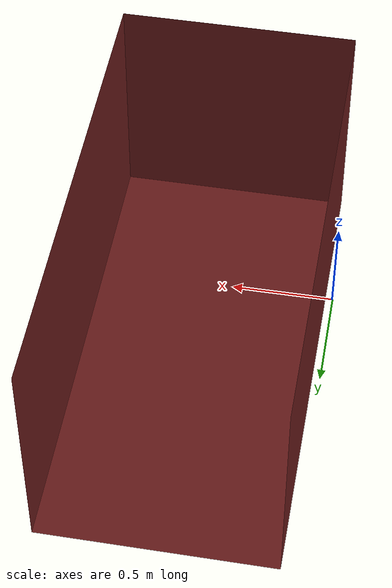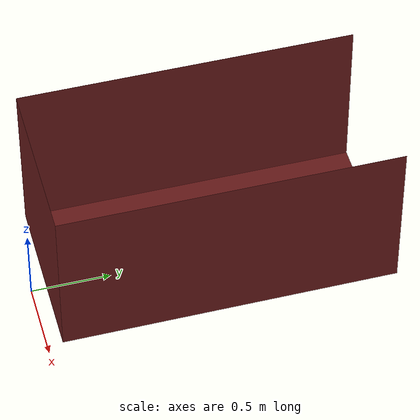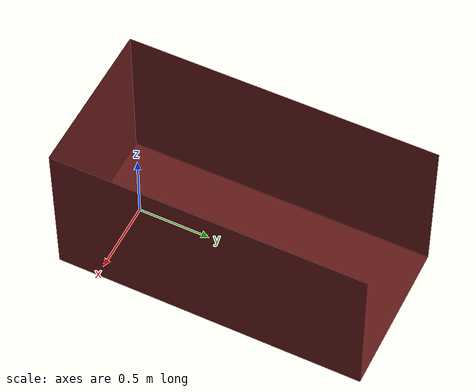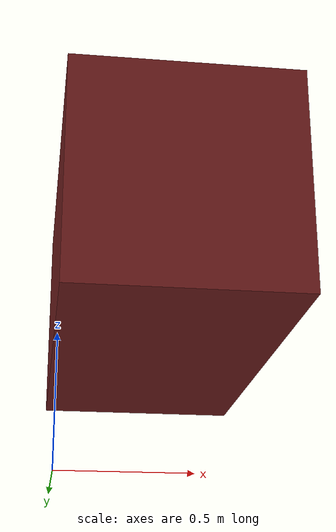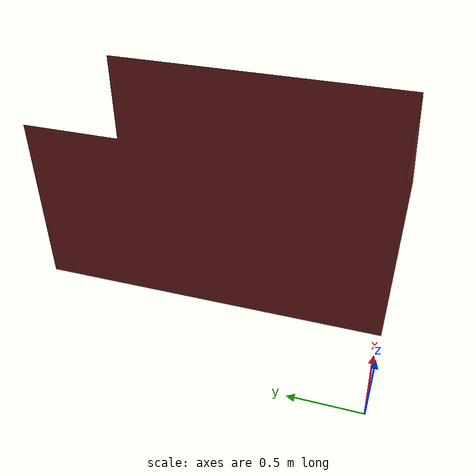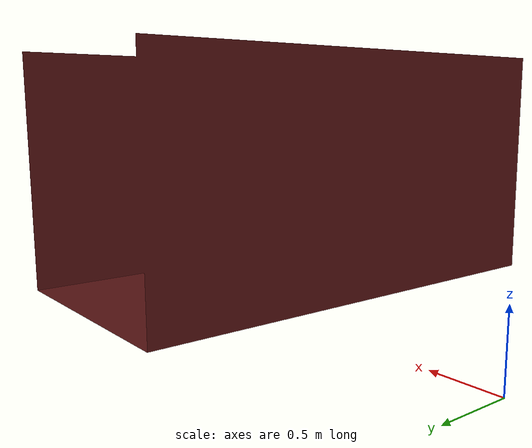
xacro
<?xml version="1.0"?>
<robot name="room">
  <link name="room_link">
    <visual>
      <geometry>
        <mesh filename="file:/home/roger/Github/rogertests/rogertests/RETO_PATOS/3D_Reconstruction/out/reconstructed_room2.stl" scale="1 1 1"/>
      </geometry>
      <origin xyz="0 0 0.7" rpy="1.57 0 0"/>
      <material name="gray">
        <color rgba="0.4 0.1 0.1 1.0"/>
      </material>
    </visual>
  </link>
</robot>
